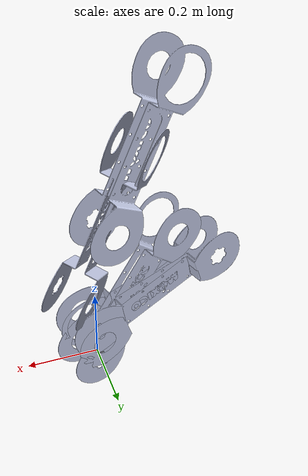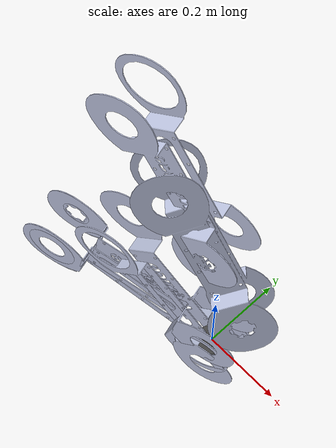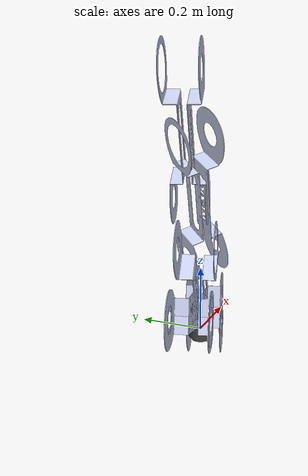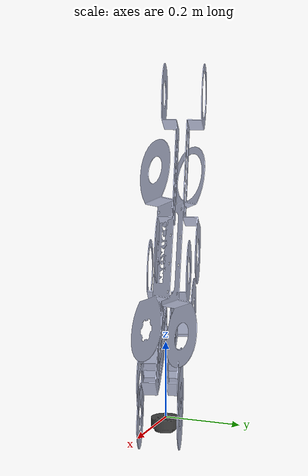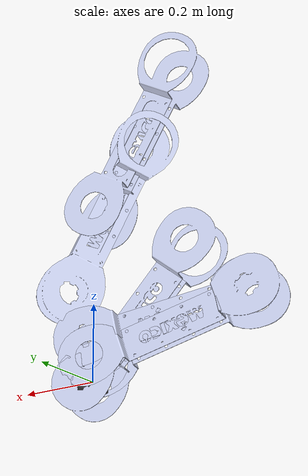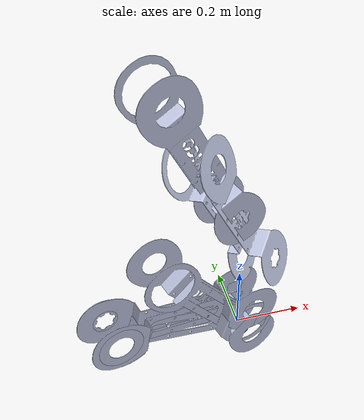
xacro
<?xml version="1.0" encoding="utf-8"?>
<robot xmlns:xacro="http://www.ros.org/wiki/xacro">

  <link name="arm_base_link">
    <inertial>
      <origin xyz="1.281E-06 -0.015414 0.0001483" rpy="0 0 0" />
      <mass value="0.13795" />
      <inertia ixx="5.7399E-05" ixy="-2.5472E-09" ixz="1.5566E-09" iyy="9.0274E-05" iyz="3.1683E-07" izz="5.7877E-05" />
    </inertial>
    <visual>
      <origin xyz="0 0 0" rpy="0 0 0" />
      <geometry>
        <mesh filename="package://maya_description/meshes/base_link_arm.STL" />
      </geometry>
      <material name=""><color rgba="0.25098 0.25098 0.25098 1" /></material>
    </visual>
    <collision>
      <origin xyz="0 0 0" rpy="0 0 0" />
      <geometry>
        <mesh filename="package://maya_description/meshes/base_link_arm.STL" />
      </geometry>
    </collision>
  </link>

  <link name="motor_1_link">
    <inertial>
      <origin
        xyz="-0.01826 0.087242 -0.013905"
        rpy="0 0 0" />
      <mass
        value="1.4762" />
      <inertia
        ixx="0.0048225"
        ixy="0.00038805"
        ixz="0.00046269"
        iyy="0.0024977"
        iyz="0.00013488"
        izz="0.0032284" />
    </inertial>
    <visual>
      <origin
        xyz="0 0 0"
        rpy="0 0 0" />
      <geometry>
        <mesh
          filename="package://maya_description/meshes/motor_1_link.STL" />
      </geometry>
      <material
        name="">
        <color
          rgba="0.79216 0.81961 0.93333 1" />
      </material>
    </visual>
    <collision>
      <origin
        xyz="0 0 0"
        rpy="0 0 0" />
      <geometry>
        <mesh
          filename="package://maya_description/meshes/motor_1_link.STL" />
      </geometry>
    </collision>
  </link>

  <joint
    name="motor_1_joint"
    type="revolute">
    <origin
      xyz="0.01 0.01 0"
      rpy="1.6654 0.083193 2.1147" />
    <parent
      link="arm_base_link" />
    <child
      link="motor_1_link" />
    <axis
      xyz="0.083097 -0.99208 0.094171" />
    <limit
      lower="-3.14"
      upper="3.14"
      effort="10"
      velocity="1" />
  </joint>

  <link
    name="motor_2_link">
    <inertial>
      <origin
        xyz="0.0051413 0.1381 -0.13076"
        rpy="0 0 0" />
      <mass
        value="0.20302" />
      <inertia
        ixx="0.0061213"
        ixy="-0.00043575"
        ixz="0.00046701"
        iyy="0.0029211"
        iyz="0.0027878"
        izz="0.0034933" />
    </inertial>
    <visual>
      <origin
        xyz="0 0 0"
        rpy="0 0 0" />
      <geometry>
        <mesh
          filename="package://maya_description/meshes/motor_2_link.STL" />
      </geometry>
      <material
        name="">
        <color
          rgba="0.79216 0.81961 0.93333 1" />
      </material>
    </visual>
    <collision>
      <origin
        xyz="0 0 0"
        rpy="0 0 0" />
      <geometry>
        <mesh
          filename="package://maya_description/meshes/motor_2_link.STL" />
      </geometry>
    </collision>
  </link>

  <joint
    name="motor_2_joint"
    type="revolute">
    <origin
      xyz="-0.008209 0.10641 -0.012659"
      rpy="-0.66405 -0.12773 -0.14792" />
    <parent
      link="motor_1_link" />
    <child
      link="motor_2_link" />
    <axis
      xyz="0.95882 0.10535 0.26374" />
    <limit
      lower="-1.57"
      upper="1.57"
      effort="10"
      velocity="1" />
  </joint>

  <link
    name="motor_3_link">
    <inertial>
      <origin
        xyz="0.040888 -0.015104 -0.21939"
        rpy="0 0 0" />
      <mass
        value="2.5829" />
      <inertia
        ixx="0.010998"
        ixy="0.00033165"
        ixz="0.0021115"
        iyy="0.0090948"
        iyz="-0.00019922"
        izz="0.0041817" />
    </inertial>
    <visual>
      <origin
        xyz="0 0 0"
        rpy="0 0 0" />
      <geometry>
        <mesh
          filename="package://maya_description/meshes/motor_3_link.STL" />
      </geometry>
      <material
        name="">
        <color
          rgba="0.79216 0.81961 0.93333 1" />
      </material>
    </visual>
    <collision>
      <origin
        xyz="0 0 0"
        rpy="0 0 0" />
      <geometry>
        <mesh
          filename="package://maya_description/meshes/motor_3_link.STL" />
      </geometry>
    </collision>
  </link>

  <joint
    name="motor_3_joint"
    type="revolute">
    <origin
      xyz="0.043255 0.30932 -0.2808"
      rpy="-3.0668 -0.54323 0.19802" />
    <parent
      link="motor_2_link" />
    <child
      link="motor_3_link" />
    <axis
      xyz="0.95882 0.10535 0.26374" />
    <limit
      lower="-2.09"
      upper="2.09"
      effort="10"
      velocity="1" />
  </joint>

  <link
    name="motor_4_link">
    <inertial>
      <origin
        xyz="0.00645 -0.1166 0.11285"
        rpy="0 0 0" />
      <mass
        value="0.39644" />
      <inertia
        ixx="0.00054582"
        ixy="4.8132E-06"
        ixz="2.0975E-05"
        iyy="0.0004661"
        iyz="5.3813E-05"
        izz="0.00047091" />
    </inertial>
    <visual>
      <origin
        xyz="0 0 0"
        rpy="0 0 0" />
      <geometry>
        <mesh
          filename="package://maya_description/meshes/motor_4_link.STL" />
      </geometry>
      <material
        name="">
        <color
          rgba="0.79216 0.81961 0.93333 1" />
      </material>
    </visual>
    <collision>
      <origin
        xyz="0 0 0"
        rpy="0 0 0" />
      <geometry>
        <mesh
          filename="package://maya_description/meshes/motor_4_link.STL" />
      </geometry>
    </collision>
  </link>

  <joint
    name="motor_4_joint"
    type="revolute">
    <origin
      xyz="0.12051 -0.026384 -0.42756"
      rpy="0.79738 0.53316 -2.9125" />
    <parent
      link="motor_3_link" />
    <child
      link="motor_4_link" />
    <axis
      xyz="0.95882 0.10535 0.26374" />
    <limit
      lower="-2.62"
      upper="2.62"
      effort="10"
      velocity="1" />
  </joint>

  <link
    name="motor_5_link">
    <inertial>
      <origin
        xyz="-0.0065032 -0.048969 0.043567"
        rpy="0 0 0" />
      <mass
        value="0.64924" />
      <inertia
        ixx="0.00090654"
        ixy="6.0123E-06"
        ixz="1.1939E-05"
        iyy="0.00082264"
        iyz="9.507E-05"
        izz="0.00080936" />
    </inertial>
    <visual>
      <origin
        xyz="0 0 0"
        rpy="0 0 0" />
      <geometry>
        <mesh
          filename="package://maya_description/meshes/motor_5_link.STL" />
      </geometry>
      <material
        name="">
        <color
          rgba="0.79216 0.81961 0.93333 1" />
      </material>
    </visual>
    <collision>
      <origin
        xyz="0 0 0"
        rpy="0 0 0" />
      <geometry>
        <mesh
          filename="package://maya_description/meshes/motor_5_link.STL" />
      </geometry>
    </collision>
  </link>

  <joint
    name="motor_5_joint"
    type="revolute">
    <origin
      xyz="0.00064865 -0.15464 0.1444"
      rpy="-0.035391 0.45461 -0.4167" />
    <parent
      link="motor_4_link" />
    <child
      link="motor_5_link" />
    <axis
      xyz="0.099071 0.74625 -0.65825" />
    <limit
      lower="-3.14"
      upper="3.14"
      effort="10"
      velocity="1" />
  </joint>

</robot>
